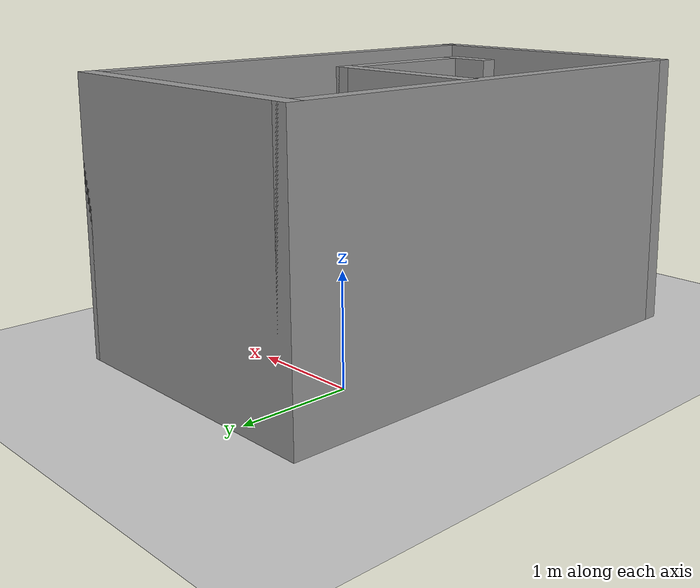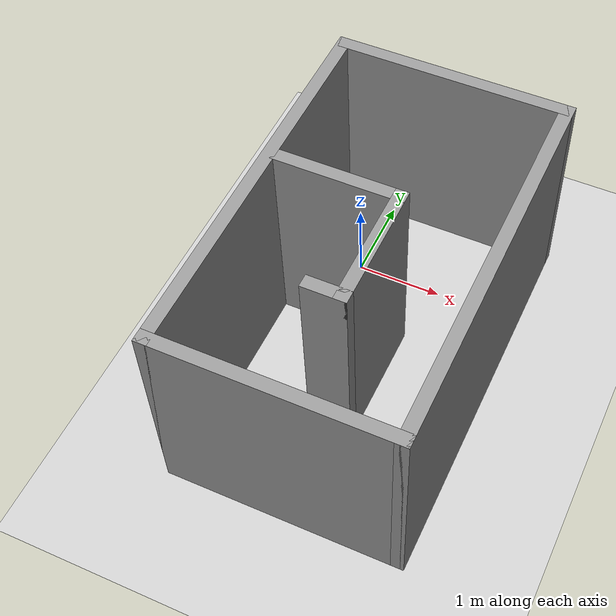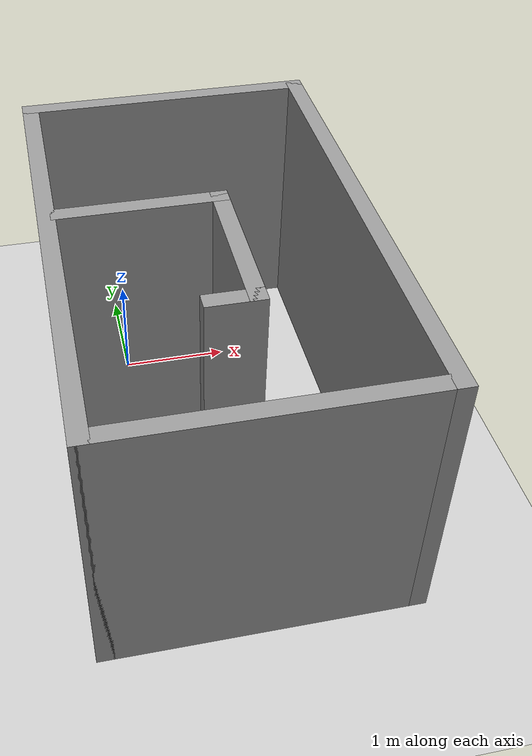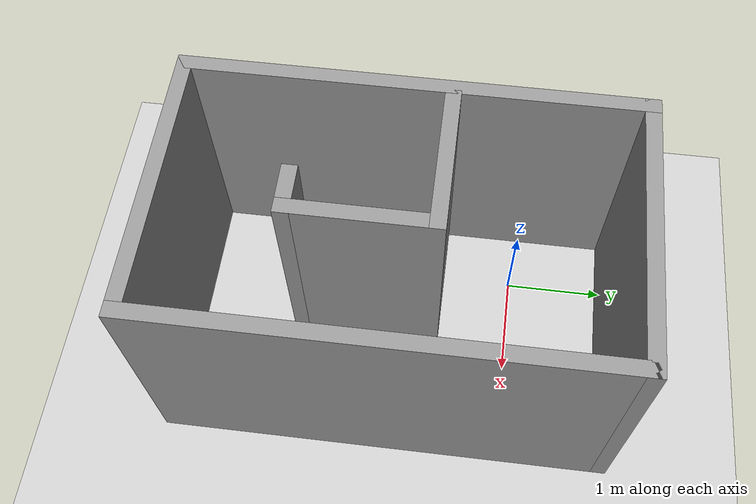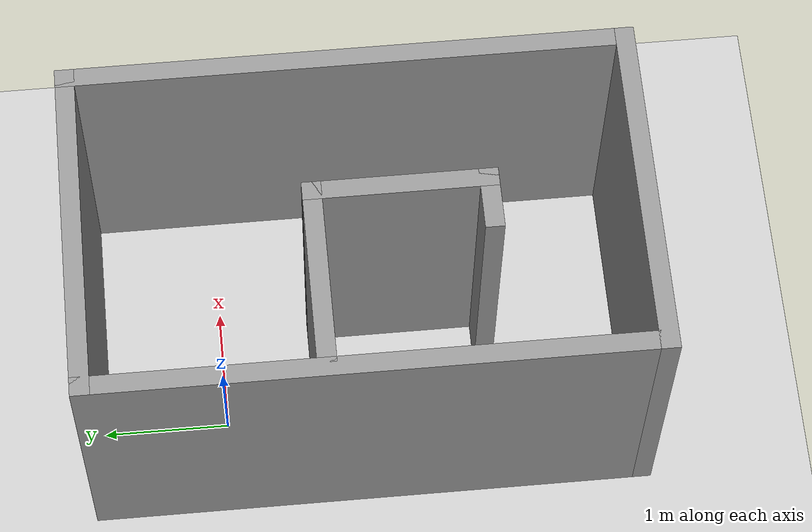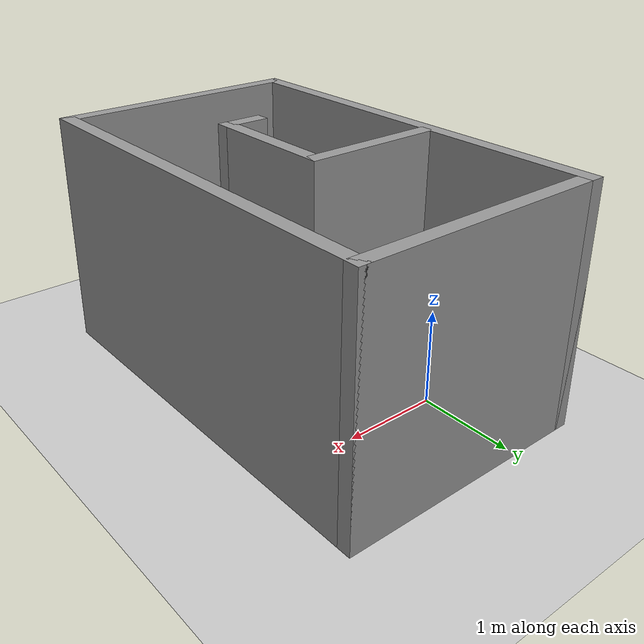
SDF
<sdf version="1.7">
 <world name="default">
  <light name="sun" type="directional">
   <pose>0 0 10 0 -0 0</pose>
   <diffuse>0.8 0.8 0.8 1</diffuse>
   <specular>0.2 0.2 0.2 1</specular>
   <attenuation>
    <range>1000</range>
    <constant>0.9</constant>
    <linear>0.01</linear>
    <quadratic>0.001</quadratic>
   </attenuation>
   <direction>-0.5 0.1 -0.9</direction>
   <spot><inner_angle>0</inner_angle><outer_angle>0</outer_angle><falloff>0</falloff></spot>
  </light>
  <model name="ground_plane">
   <static>1</static>
   <link name="link">
    <collision name="collision">
     <geometry><plane><normal>0 0 1</normal><size>100 100</size></plane></geometry>
     <surface><friction><ode><mu>100</mu><mu2>50</mu2></ode></friction></surface>
    </collision>
    <visual name="visual">
     <cast_shadows>0</cast_shadows>
     <geometry><plane><normal>0 0 1</normal><size>100 100</size></plane></geometry>
     <material>
      <script><uri>file://media/materials/scripts/gazebo.material</uri><name>Gazebo/Grey</name></script>
     </material>
    </visual>
   </link>
  </model>
  <gravity>0 0 -9.8</gravity>
  <magnetic_field>6e-06 2.3e-05 -4.2e-05</magnetic_field>
  <atmosphere type="adiabatic"/>
  <physics type="ode">
   <max_step_size>0.001</max_step_size>
   <real_time_factor>1</real_time_factor>
   <real_time_update_rate>1000</real_time_update_rate>
  </physics>
  <scene><ambient>0.4 0.4 0.4 1</ambient><background>0.7 0.7 0.7 1</background><shadows>1</shadows></scene>
  <audio><device>default</device></audio>
  <spherical_coordinates>
   <surface_model>EARTH_WGS84</surface_model>
   <latitude_deg>0</latitude_deg>
   <longitude_deg>0</longitude_deg>
   <elevation>0</elevation>
   <heading_deg>0</heading_deg>
  </spherical_coordinates>
  <model name="example_room">
   <pose>0.64 -1.145 0 0 -0 0</pose>
   <link name="Wall_10">
    <collision name="Wall_10_Collision">
     <geometry><box><size>4.5 0.15 2.5</size></box></geometry>
     <pose>0 0 1.25 0 -0 0</pose>
    </collision>
    <visual name="Wall_10_Visual">
     <pose>0 0 1.25 0 -0 0</pose>
     <geometry><box><size>4.5 0.15 2.5</size></box></geometry>
     <material>
      <script><uri>file://media/materials/scripts/gazebo.material</uri><name>Gazebo/Grey</name></script>
      <ambient>1 1 1 1</ambient>
     </material>
     <meta><layer>0</layer></meta>
    </visual>
    <pose>-1.3 0 0 0 -0 1.5708</pose>
   </link>
   <link name="Wall_15">
    <collision name="Wall_15_Collision">
     <geometry><box><size>1.5 0.15 2.5</size></box></geometry>
     <pose>0 0 1.25 0 -0 0</pose>
    </collision>
    <visual name="Wall_15_Visual">
     <pose>0 0 1.25 0 -0 0</pose>
     <geometry><box><size>1.5 0.15 2.5</size></box></geometry>
     <material>
      <script><uri>file://media/materials/scripts/gazebo.material</uri><name>Gazebo/Grey</name></script>
      <ambient>1 1 1 1</ambient>
     </material>
     <meta><layer>0</layer></meta>
    </visual>
    <pose>-0.515 0.355 0 0 -0 0</pose>
   </link>
   <link name="Wall_16">
    <collision name="Wall_16_Collision">
     <geometry><box><size>1.5 0.15 2.5</size></box></geometry>
     <pose>0 0 1.25 0 -0 0</pose>
    </collision>
    <visual name="Wall_16_Visual">
     <pose>0 0 1.25 0 -0 0</pose>
     <geometry><box><size>1.5 0.15 2.5</size></box></geometry>
     <material>
      <script><uri>file://media/materials/scripts/gazebo.material</uri><name>Gazebo/Grey</name></script>
      <ambient>1 1 1 1</ambient>
     </material>
     <meta><layer>0</layer></meta>
    </visual>
    <pose>0.16 -0.32 0 0 -0 -1.5708</pose>
   </link>
   <link name="Wall_17">
    <collision name="Wall_17_Collision">
     <geometry><box><size>0.5 0.15 2.5</size></box></geometry>
     <pose>0 0 1.25 0 -0 0</pose>
    </collision>
    <visual name="Wall_17_Visual">
     <pose>0 0 1.25 0 -0 0</pose>
     <geometry><box><size>0.5 0.15 2.5</size></box></geometry>
     <material>
      <script><uri>file://media/materials/scripts/gazebo.material</uri><name>Gazebo/Grey</name></script>
      <ambient>1 1 1 1</ambient>
     </material>
     <meta><layer>0</layer></meta>
    </visual>
    <pose>-0.015 -0.995 0 0 -0 3.14159</pose>
   </link>
   <link name="Wall_19">
    <collision name="Wall_19_Collision">
     <geometry><box><size>2.75 0.15 2.5</size></box></geometry>
     <pose>0 0 1.25 0 -0 0</pose>
    </collision>
    <visual name="Wall_19_Visual">
     <pose>0 0 1.25 0 -0 0</pose>
     <geometry><box><size>2.75 0.15 2.5</size></box></geometry>
     <material>
      <script><uri>file://media/materials/scripts/gazebo.material</uri><name>Gazebo/Grey</name></script>
      <ambient>1 1 1 1</ambient>
     </material>
     <meta><layer>0</layer></meta>
    </visual>
    <pose>-0 -2.175 0 0 -0 0</pose>
   </link>
   <link name="Wall_20">
    <collision name="Wall_20_Collision">
     <geometry><box><size>4.5 0.15 2.5</size></box></geometry>
     <pose>0 0 1.25 0 -0 0</pose>
    </collision>
    <visual name="Wall_20_Visual">
     <pose>0 0 1.25 0 -0 0</pose>
     <geometry><box><size>4.5 0.15 2.5</size></box></geometry>
     <material>
      <script><uri>file://media/materials/scripts/gazebo.material</uri><name>Gazebo/Grey</name></script>
      <ambient>1 1 1 1</ambient>
     </material>
     <meta><layer>0</layer></meta>
    </visual>
    <pose>1.3 0 0 0 -0 1.5708</pose>
   </link>
   <link name="Wall_7">
    <collision name="Wall_7_Collision">
     <geometry><box><size>2.75 0.15 2.5</size></box></geometry>
     <pose>0 0 1.25 0 -0 0</pose>
    </collision>
    <visual name="Wall_7_Visual">
     <pose>0 0 1.25 0 -0 0</pose>
     <geometry><box><size>2.75 0.15 2.5</size></box></geometry>
     <material>
      <script><uri>file://media/materials/scripts/gazebo.material</uri><name>Gazebo/Grey</name></script>
      <ambient>1 1 1 1</ambient>
     </material>
     <meta><layer>0</layer></meta>
    </visual>
    <pose>-0 2.175 0 0 -0 0</pose>
   </link>
   <static>1</static>
  </model>
 </world>
</sdf>
